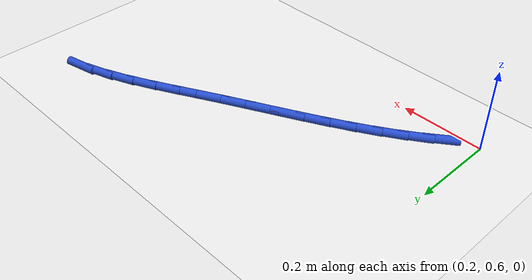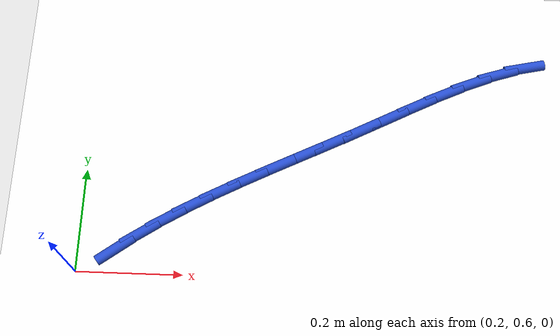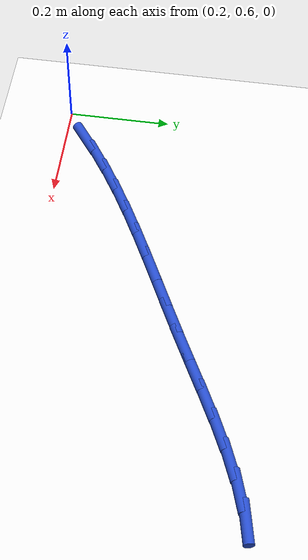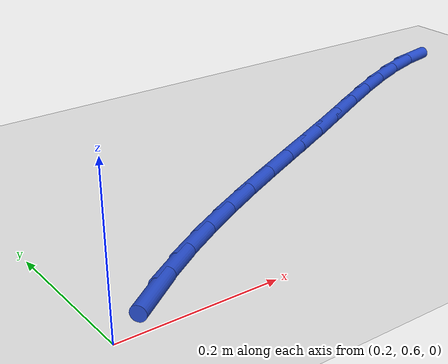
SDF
<sdf version="1.6">
 <world name="default">
  <model name="ground_plane">
   <static>1</static>
   <link name="link">
    <collision name="collision">
     <geometry><plane><normal>0 0 1</normal><size>100 100</size></plane></geometry>
     <surface><friction><ode><mu>100</mu><mu2>50</mu2></ode></friction></surface>
    </collision>
    <visual name="visual">
     <cast_shadows>0</cast_shadows>
     <geometry><plane><normal>0 0 1</normal><size>100 100</size></plane></geometry>
     <material>
      <script><uri>file://media/materials/scripts/gazebo.material</uri><name>Gazebo/WhiteGlow</name></script>
     </material>
    </visual>
   </link>
  </model>
  <model name="line">
   <link name="link_13">
    <pose>0.2714246508245423 0.6428051006317232 0.01 0 1.57 0.6378132828350808</pose>
    <collision name="collision">
     <geometry><cylinder><radius>0.01</radius><length>0.08</length></cylinder></geometry>
    </collision>
    <visual name="visual">
     <material>
      <script><name>Gazebo/Blue</name><uri>file://media/materials/scripts/gazebo.material</uri></script>
     </material>
     <geometry><cylinder><radius>0.01</radius><length>0.08</length></cylinder></geometry>
    </visual>
   </link>
   <link name="link_14">
    <pose>0.31509111470241064 0.6751685190078419 0.01 0 1.57 0.5860072246454482</pose>
    <collision name="collision">
     <geometry><cylinder><radius>0.01</radius><length>0.08</length></cylinder></geometry>
    </collision>
    <visual name="visual">
     <material>
      <script><name>Gazebo/Blue</name><uri>file://media/materials/scripts/gazebo.material</uri></script>
     </material>
     <geometry><cylinder><radius>0.01</radius><length>0.08</length></cylinder></geometry>
    </visual>
   </link>
   <link name="link_15">
    <pose>0.36109038737110244 0.7057022969954513 0.01 0 1.57 0.543840332566566</pose>
    <collision name="collision">
     <geometry><cylinder><radius>0.01</radius><length>0.08</length></cylinder></geometry>
    </collision>
    <visual name="visual">
     <material>
      <script><name>Gazebo/Blue</name><uri>file://media/materials/scripts/gazebo.material</uri></script>
     </material>
     <geometry><cylinder><radius>0.01</radius><length>0.08</length></cylinder></geometry>
    </visual>
   </link>
   <link name="link_16">
    <pose>0.4091268324702998 0.7347481060562989 0.01 0 1.57 0.5108528711124128</pose>
    <collision name="collision">
     <geometry><cylinder><radius>0.01</radius><length>0.08</length></cylinder></geometry>
    </collision>
    <visual name="visual">
     <material>
      <script><name>Gazebo/Blue</name><uri>file://media/materials/scripts/gazebo.material</uri></script>
     </material>
     <geometry><cylinder><radius>0.01</radius><length>0.08</length></cylinder></geometry>
    </visual>
   </link>
   <link name="link_17">
    <pose>0.4589048136396847 0.7626476176521325 0.01 0 1.57 0.48653869779912357</pose>
    <collision name="collision">
     <geometry><cylinder><radius>0.01</radius><length>0.08</length></cylinder></geometry>
    </collision>
    <visual name="visual">
     <material>
      <script><name>Gazebo/Blue</name><uri>file://media/materials/scripts/gazebo.material</uri></script>
     </material>
     <geometry><cylinder><radius>0.01</radius><length>0.08</length></cylinder></geometry>
    </visual>
   </link>
   <link name="link_18">
    <pose>0.5101286945189392 0.7897425032446989 0.01 0 1.57 0.47041958940879075</pose>
    <collision name="collision">
     <geometry><cylinder><radius>0.01</radius><length>0.08</length></cylinder></geometry>
    </collision>
    <visual name="visual">
     <material>
      <script><name>Gazebo/Blue</name><uri>file://media/materials/scripts/gazebo.material</uri></script>
     </material>
     <geometry><cylinder><radius>0.01</radius><length>0.08</length></cylinder></geometry>
    </visual>
   </link>
   <link name="link_19">
    <pose>0.5625028387477453 0.816374434295746 0.01 0 1.57 0.46208727260397925</pose>
    <collision name="collision">
     <geometry><cylinder><radius>0.01</radius><length>0.08</length></cylinder></geometry>
    </collision>
    <visual name="visual">
     <material>
      <script><name>Gazebo/Blue</name><uri>file://media/materials/scripts/gazebo.material</uri></script>
     </material>
     <geometry><cylinder><radius>0.01</radius><length>0.08</length></cylinder></geometry>
    </visual>
   </link>
   <link name="link_20">
    <pose>0.6157316099657854 0.8428850822670213 0.01 0 1.57 0.46122264552962255</pose>
    <collision name="collision">
     <geometry><cylinder><radius>0.01</radius><length>0.08</length></cylinder></geometry>
    </collision>
    <visual name="visual">
     <material>
      <script><name>Gazebo/Blue</name><uri>file://media/materials/scripts/gazebo.material</uri></script>
     </material>
     <geometry><cylinder><radius>0.01</radius><length>0.08</length></cylinder></geometry>
    </visual>
   </link>
   <link name="link_21">
    <pose>0.669519371812741 0.869616118620272 0.01 0 1.57 0.4675995436726575</pose>
    <collision name="collision">
     <geometry><cylinder><radius>0.01</radius><length>0.08</length></cylinder></geometry>
    </collision>
    <visual name="visual">
     <material>
      <script><name>Gazebo/Blue</name><uri>file://media/materials/scripts/gazebo.material</uri></script>
     </material>
     <geometry><cylinder><radius>0.01</radius><length>0.08</length></cylinder></geometry>
    </visual>
   </link>
   <link name="link_22">
    <pose>0.7235704879282949 0.8969092148172458 0.01 0 1.57 0.4787313564634089</pose>
    <collision name="collision">
     <geometry><cylinder><radius>0.01</radius><length>0.08</length></cylinder></geometry>
    </collision>
    <visual name="visual">
     <material>
      <script><name>Gazebo/Blue</name><uri>file://media/materials/scripts/gazebo.material</uri></script>
     </material>
     <geometry><cylinder><radius>0.01</radius><length>0.08</length></cylinder></geometry>
    </visual>
   </link>
   <link name="link_23">
    <pose>0.7776131217764946 0.9249573102485428 0.01 0 1.57 0.47979822707333825</pose>
    <collision name="collision">
     <geometry><cylinder><radius>0.01</radius><length>0.08</length></cylinder></geometry>
    </collision>
    <visual name="visual">
     <material>
      <script><name>Gazebo/Blue</name><uri>file://media/materials/scripts/gazebo.material</uri></script>
     </material>
     <geometry><cylinder><radius>0.01</radius><length>0.08</length></cylinder></geometry>
    </visual>
   </link>
   <link name="link_24">
    <pose>0.8315261945003849 0.9530112154262737 0.01 0 1.57 0.46486954354543053</pose>
    <collision name="collision">
     <geometry><cylinder><radius>0.01</radius><length>0.08</length></cylinder></geometry>
    </collision>
    <visual name="visual">
     <material>
      <script><name>Gazebo/Blue</name><uri>file://media/materials/scripts/gazebo.material</uri></script>
     </material>
     <geometry><cylinder><radius>0.01</radius><length>0.08</length></cylinder></geometry>
    </visual>
   </link>
   <link name="link_25">
    <pose>0.8852474784451025 0.9799539624687996 0.01 0 1.57 0.4329706692514658</pose>
    <collision name="collision">
     <geometry><cylinder><radius>0.01</radius><length>0.08</length></cylinder></geometry>
    </collision>
    <visual name="visual">
     <material>
      <script><name>Gazebo/Blue</name><uri>file://media/materials/scripts/gazebo.material</uri></script>
     </material>
     <geometry><cylinder><radius>0.01</radius><length>0.08</length></cylinder></geometry>
    </visual>
   </link>
   <link name="link_26">
    <pose>0.9387148806040259 1.0046677420382095 0.01 0 1.57 0.38223141377624964</pose>
    <collision name="collision">
     <geometry><cylinder><radius>0.01</radius><length>0.08</length></cylinder></geometry>
    </collision>
    <visual name="visual">
     <material>
      <script><name>Gazebo/Blue</name><uri>file://media/materials/scripts/gazebo.material</uri></script>
     </material>
     <geometry><cylinder><radius>0.01</radius><length>0.08</length></cylinder></geometry>
    </visual>
   </link>
   <link name="link_27">
    <pose>0.9918663079705308 1.0260347447965903 0.01 0 1.57 0.30995975100145423</pose>
    <collision name="collision">
     <geometry><cylinder><radius>0.01</radius><length>0.08</length></cylinder></geometry>
    </collision>
    <visual name="visual">
     <material>
      <script><name>Gazebo/Blue</name><uri>file://media/materials/scripts/gazebo.material</uri></script>
     </material>
     <geometry><cylinder><radius>0.01</radius><length>0.08</length></cylinder></geometry>
    </visual>
   </link>
   <link name="link_28">
    <pose>1.0446396675379952 1.0429371614060299 0.01 0 1.57 0.2130247832627712</pose>
    <collision name="collision">
     <geometry><cylinder><radius>0.01</radius><length>0.08</length></cylinder></geometry>
    </collision>
    <visual name="visual">
     <material>
      <script><name>Gazebo/Blue</name><uri>file://media/materials/scripts/gazebo.material</uri></script>
     </material>
     <geometry><cylinder><radius>0.01</radius><length>0.08</length></cylinder></geometry>
    </visual>
   </link>
  </model>
 </world>
</sdf>
